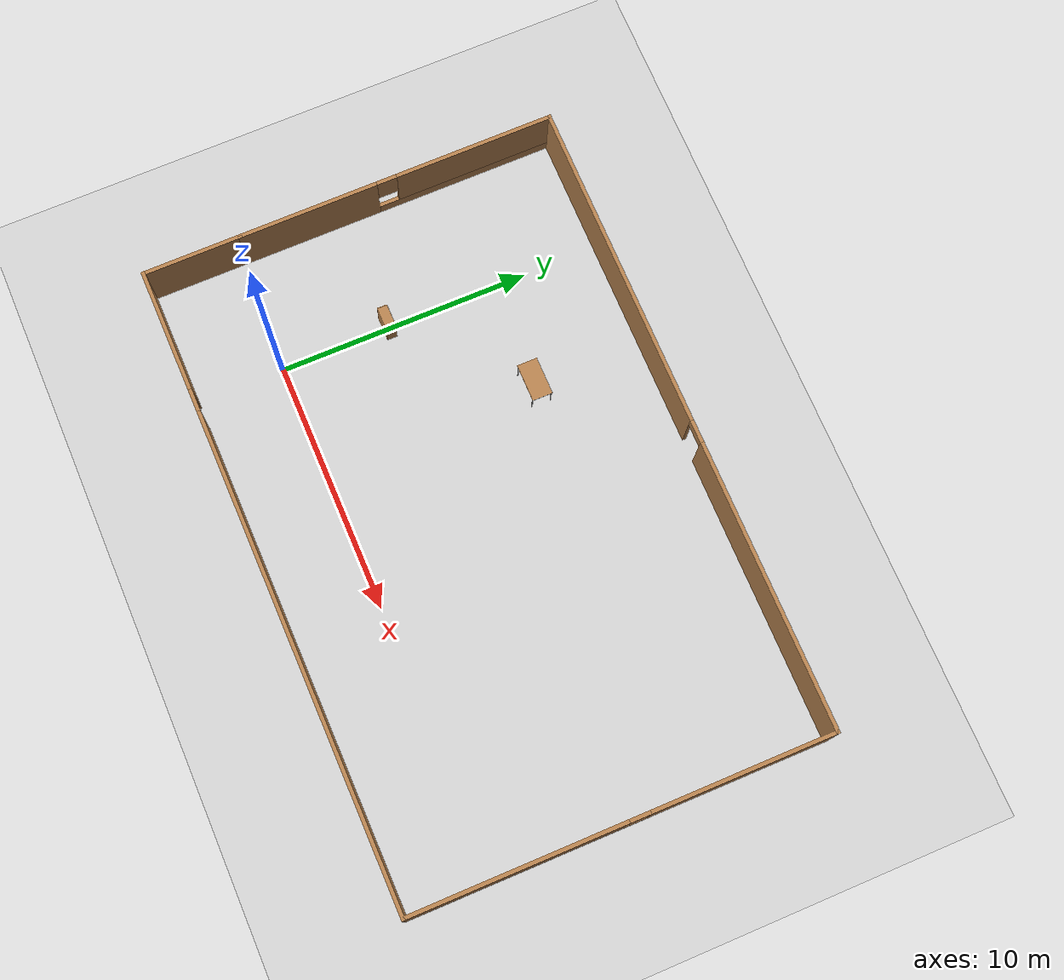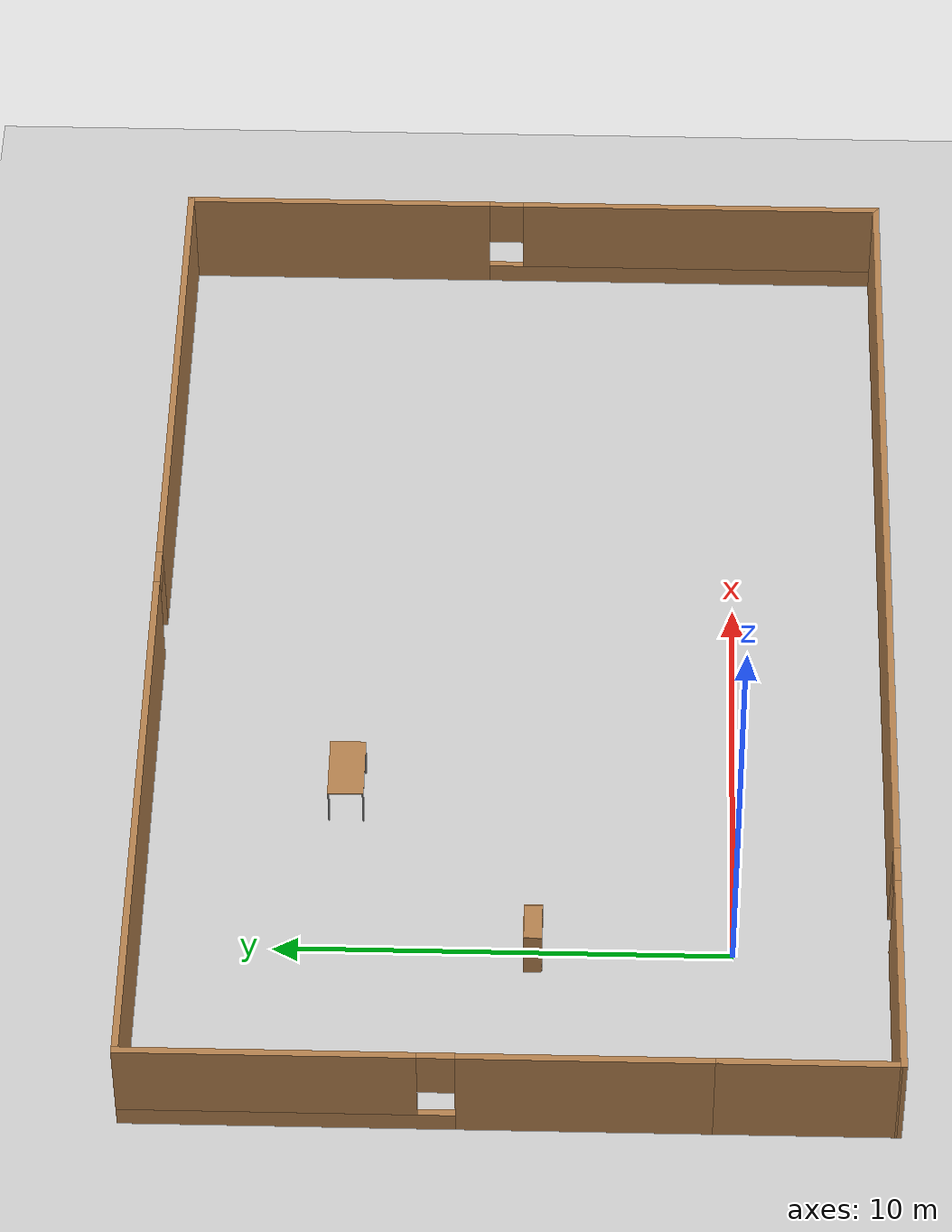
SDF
<sdf version="1.7">
 <world name="default">
  <light name="sun" type="directional">
   <pose>0 0 10 0 -0 0</pose>
   <diffuse>0.8 0.8 0.8 1</diffuse>
   <specular>0.2 0.2 0.2 1</specular>
   <attenuation>
    <range>1000</range>
    <constant>0.9</constant>
    <linear>0.01</linear>
    <quadratic>0.001</quadratic>
   </attenuation>
   <direction>-0.5 0.1 -0.9</direction>
   <spot><inner_angle>0</inner_angle><outer_angle>0</outer_angle><falloff>0</falloff></spot>
  </light>
  <model name="ground_plane">
   <static>1</static>
   <link name="link">
    <collision name="collision">
     <geometry><plane><normal>0 0 1</normal><size>100 100</size></plane></geometry>
     <surface><friction><ode><mu>100</mu><mu2>50</mu2></ode></friction></surface>
    </collision>
    <visual name="visual">
     <cast_shadows>0</cast_shadows>
     <geometry><plane><normal>0 0 1</normal><size>100 100</size></plane></geometry>
     <material>
      <script><uri>file://media/materials/scripts/gazebo.material</uri><name>Gazebo/Grey</name></script>
     </material>
    </visual>
   </link>
  </model>
  <gravity>0 0 -9.8</gravity>
  <magnetic_field>6e-06 2.3e-05 -4.2e-05</magnetic_field>
  <atmosphere type="adiabatic"/>
  <physics type="ode">
   <max_step_size>0.001</max_step_size>
   <real_time_factor>1</real_time_factor>
   <real_time_update_rate>1000</real_time_update_rate>
  </physics>
  <scene><ambient>0.4 0.4 0.4 1</ambient><background>0.7 0.7 0.7 1</background><shadows>1</shadows></scene>
  <audio><device>default</device></audio>
  <spherical_coordinates>
   <surface_model>EARTH_WGS84</surface_model>
   <latitude_deg>0</latitude_deg>
   <longitude_deg>0</longitude_deg>
   <elevation>0</elevation>
   <heading_deg>0</heading_deg>
  </spherical_coordinates>
  <model name="bookshelf">
   <static>1</static>
   <link name="link">
    <inertial><mass>1</mass></inertial>
    <collision name="back">
     <pose>0 0.005 0.6 0 -0 0</pose>
     <geometry><box><size>0.9 0.01 1.2</size></box></geometry>
    </collision>
    <visual name="visual1">
     <pose>0 0.005 0.6 0 -0 0</pose>
     <geometry><box><size>0.9 0.01 1.2</size></box></geometry>
     <material>
      <script><uri>file://media/materials/scripts/gazebo.material</uri><name>Gazebo/Wood</name></script>
     </material>
    </visual>
    <collision name="left_side">
     <pose>0.45 -0.195 0.6 0 -0 0</pose>
     <geometry><box><size>0.02 0.4 1.2</size></box></geometry>
    </collision>
    <visual name="visual2">
     <pose>0.45 -0.195 0.6 0 -0 0</pose>
     <geometry><box><size>0.02 0.4 1.2</size></box></geometry>
     <material>
      <script><uri>file://media/materials/scripts/gazebo.material</uri><name>Gazebo/Wood</name></script>
     </material>
    </visual>
    <collision name="right_side">
     <pose>-0.45 -0.195 0.6 0 -0 0</pose>
     <geometry><box><size>0.02 0.4 1.2</size></box></geometry>
    </collision>
    <visual name="visual3">
     <pose>-0.45 -0.195 0.6 0 -0 0</pose>
     <geometry><box><size>0.02 0.4 1.2</size></box></geometry>
     <material>
      <script><uri>file://media/materials/scripts/gazebo.material</uri><name>Gazebo/Wood</name></script>
     </material>
    </visual>
    <collision name="bottom">
     <pose>0 -0.195 0.03 0 -0 0</pose>
     <geometry><box><size>0.88 0.4 0.06</size></box></geometry>
    </collision>
    <visual name="visual4">
     <pose>0 -0.195 0.03 0 -0 0</pose>
     <geometry><box><size>0.88 0.4 0.06</size></box></geometry>
     <material>
      <script><uri>file://media/materials/scripts/gazebo.material</uri><name>Gazebo/Wood</name></script>
     </material>
    </visual>
    <collision name="top">
     <pose>0 -0.195 1.19 0 -0 0</pose>
     <geometry><box><size>0.88 0.4 0.02</size></box></geometry>
    </collision>
    <visual name="visual5">
     <pose>0 -0.195 1.19 0 -0 0</pose>
     <geometry><box><size>0.88 0.4 0.02</size></box></geometry>
     <material>
      <script><uri>file://media/materials/scripts/gazebo.material</uri><name>Gazebo/Wood</name></script>
     </material>
    </visual>
    <collision name="low_shelf">
     <pose>0 -0.195 0.43 0 -0 0</pose>
     <geometry><box><size>0.88 0.4 0.02</size></box></geometry>
    </collision>
    <visual name="visual6">
     <pose>0 -0.195 0.43 0 -0 0</pose>
     <geometry><box><size>0.88 0.4 0.02</size></box></geometry>
     <material>
      <script><uri>file://media/materials/scripts/gazebo.material</uri><name>Gazebo/Wood</name></script>
     </material>
    </visual>
    <collision name="high_shelf">
     <pose>0 -0.195 0.8 0 -0 0</pose>
     <geometry><box><size>0.88 0.4 0.02</size></box></geometry>
    </collision>
    <visual name="visual7">
     <pose>0 -0.195 0.8 0 -0 0</pose>
     <geometry><box><size>0.88 0.4 0.02</size></box></geometry>
     <material>
      <script><uri>file://media/materials/scripts/gazebo.material</uri><name>Gazebo/Wood</name></script>
     </material>
    </visual>
   </link>
   <pose>-0.045251 4.53716 0 0 -0 0</pose>
  </model>
  <model name="table">
   <static>1</static>
   <link name="link">
    <collision name="surface">
     <pose>0 0 1 0 -0 0</pose>
     <geometry><box><size>1.5 0.8 0.03</size></box></geometry>
     <surface><friction><ode><mu>0.6</mu><mu2>0.6</mu2></ode></friction></surface>
    </collision>
    <visual name="visual1">
     <pose>0 0 1 0 -0 0</pose>
     <geometry><box><size>1.5 0.8 0.03</size></box></geometry>
     <material>
      <script><uri>file://media/materials/scripts/gazebo.material</uri><name>Gazebo/Wood</name></script>
     </material>
    </visual>
    <collision name="front_left_leg">
     <pose>0.68 0.38 0.5 0 -0 0</pose>
     <geometry><cylinder><radius>0.02</radius><length>1</length></cylinder></geometry>
    </collision>
    <visual name="front_left_leg">
     <pose>0.68 0.38 0.5 0 -0 0</pose>
     <geometry><cylinder><radius>0.02</radius><length>1</length></cylinder></geometry>
     <material>
      <script><uri>file://media/materials/scripts/gazebo.material</uri><name>Gazebo/Grey</name></script>
     </material>
    </visual>
    <collision name="front_right_leg">
     <pose>0.68 -0.38 0.5 0 -0 0</pose>
     <geometry><cylinder><radius>0.02</radius><length>1</length></cylinder></geometry>
    </collision>
    <visual name="front_right_leg">
     <pose>0.68 -0.38 0.5 0 -0 0</pose>
     <geometry><cylinder><radius>0.02</radius><length>1</length></cylinder></geometry>
     <material>
      <script><uri>file://media/materials/scripts/gazebo.material</uri><name>Gazebo/Grey</name></script>
     </material>
    </visual>
    <collision name="back_right_leg">
     <pose>-0.68 -0.38 0.5 0 -0 0</pose>
     <geometry><cylinder><radius>0.02</radius><length>1</length></cylinder></geometry>
    </collision>
    <visual name="back_right_leg">
     <pose>-0.68 -0.38 0.5 0 -0 0</pose>
     <geometry><cylinder><radius>0.02</radius><length>1</length></cylinder></geometry>
     <material>
      <script><uri>file://media/materials/scripts/gazebo.material</uri><name>Gazebo/Grey</name></script>
     </material>
    </visual>
    <collision name="back_left_leg">
     <pose>-0.68 0.38 0.5 0 -0 0</pose>
     <geometry><cylinder><radius>0.02</radius><length>1</length></cylinder></geometry>
    </collision>
    <visual name="back_left_leg">
     <pose>-0.68 0.38 0.5 0 -0 0</pose>
     <geometry><cylinder><radius>0.02</radius><length>1</length></cylinder></geometry>
     <material>
      <script><uri>file://media/materials/scripts/gazebo.material</uri><name>Gazebo/Grey</name></script>
     </material>
    </visual>
   </link>
   <pose>4.33591 8.559 0 0 -0 0</pose>
  </model>
  <model name="NewWorld">
   <pose>8.01536 4.74867 0 0 -0 0</pose>
   <link name="Wall_1">
    <collision name="Wall_1_Collision">
     <geometry><box><size>4 0.15 2.5</size></box></geometry>
     <pose>0 0 1.25 0 -0 0</pose>
    </collision>
    <visual name="Wall_1_Visual">
     <pose>0 0 1.25 0 -0 0</pose>
     <geometry><box><size>4 0.15 2.5</size></box></geometry>
     <material>
      <script><uri>file://media/materials/scripts/gazebo.material</uri><name>Gazebo/Wood</name></script>
      <ambient>1 1 1 1</ambient>
     </material>
     <meta><layer>0</layer></meta>
    </visual>
    <pose>-12.675 -6.29985 0 0 -0 1.5708</pose>
   </link>
   <link name="Wall_2">
    <pose>-12.675 1.92515 0 0 -0 1.5708</pose>
    <visual name="Wall_2_Visual_0">
     <pose>-3.58435 0 1.25 0 -0 0</pose>
     <geometry><box><size>5.58131 0.15 2.5</size></box></geometry>
     <material>
      <script><uri>file://media/materials/scripts/gazebo.material</uri><name>Gazebo/Wood</name></script>
      <ambient>1 1 1 1</ambient>
     </material>
     <meta><layer>0</layer></meta>
    </visual>
    <collision name="Wall_2_Collision_0">
     <geometry><box><size>5.58131 0.15 2.5</size></box></geometry>
     <pose>-3.58435 0 1.25 0 -0 0</pose>
    </collision>
    <visual name="Wall_2_Visual_1">
     <pose>2.79065 0 0.25 0 -0 0</pose>
     <geometry><box><size>7.16869 0.15 0.5</size></box></geometry>
     <material>
      <script><uri>file://media/materials/scripts/gazebo.material</uri><name>Gazebo/Wood</name></script>
      <ambient>1 1 1 1</ambient>
     </material>
     <meta><layer>0</layer></meta>
    </visual>
    <collision name="Wall_2_Collision_1">
     <geometry><box><size>7.16869 0.15 0.5</size></box></geometry>
     <pose>2.79065 0 0.25 0 -0 0</pose>
    </collision>
    <visual name="Wall_2_Visual_2">
     <pose>3.19065 0 1.5 0 -0 0</pose>
     <geometry><box><size>6.36869 0.15 2</size></box></geometry>
     <material>
      <script><uri>file://media/materials/scripts/gazebo.material</uri><name>Gazebo/Wood</name></script>
      <ambient>1 1 1 1</ambient>
     </material>
     <meta><layer>0</layer></meta>
    </visual>
    <collision name="Wall_2_Collision_2">
     <geometry><box><size>6.36869 0.15 2</size></box></geometry>
     <pose>3.19065 0 1.5 0 -0 0</pose>
    </collision>
    <visual name="Wall_2_Visual_3">
     <pose>-0.393692 0 1.9 0 -0 0</pose>
     <geometry><box><size>0.8 0.15 1.2</size></box></geometry>
     <material>
      <script><uri>file://media/materials/scripts/gazebo.material</uri><name>Gazebo/Wood</name></script>
      <ambient>1 1 1 1</ambient>
     </material>
     <meta><layer>0</layer></meta>
    </visual>
    <collision name="Wall_2_Collision_3">
     <geometry><box><size>0.8 0.15 1.2</size></box></geometry>
     <pose>-0.393692 0 1.9 0 -0 0</pose>
    </collision>
   </link>
   <link name="Wall_3">
    <pose>0 8.22515 0 0 -0 0</pose>
    <visual name="Wall_3_Visual_0">
     <pose>-6.17308 0 1.25 0 -0 0</pose>
     <geometry><box><size>13.1538 0.15 2.5</size></box></geometry>
     <material>
      <script><uri>file://media/materials/scripts/gazebo.material</uri><name>Gazebo/Wood</name></script>
      <ambient>1 1 1 1</ambient>
     </material>
     <meta><layer>0</layer></meta>
    </visual>
    <collision name="Wall_3_Collision_0">
     <geometry><box><size>13.1538 0.15 2.5</size></box></geometry>
     <pose>-6.17308 0 1.25 0 -0 0</pose>
    </collision>
    <visual name="Wall_3_Visual_1">
     <pose>7.02692 0 1.25 0 -0 0</pose>
     <geometry><box><size>11.4462 0.15 2.5</size></box></geometry>
     <material>
      <script><uri>file://media/materials/scripts/gazebo.material</uri><name>Gazebo/Wood</name></script>
      <ambient>1 1 1 1</ambient>
     </material>
     <meta><layer>0</layer></meta>
    </visual>
    <collision name="Wall_3_Collision_1">
     <geometry><box><size>11.4462 0.15 2.5</size></box></geometry>
     <pose>7.02692 0 1.25 0 -0 0</pose>
    </collision>
    <visual name="Wall_3_Visual_2">
     <pose>0.853834 0 2.25 0 -0 0</pose>
     <geometry><box><size>0.9 0.15 0.5</size></box></geometry>
     <material>
      <script><uri>file://media/materials/scripts/gazebo.material</uri><name>Gazebo/Wood</name></script>
      <ambient>1 1 1 1</ambient>
     </material>
     <meta><layer>0</layer></meta>
    </visual>
    <collision name="Wall_3_Collision_2">
     <geometry><box><size>0.9 0.15 0.5</size></box></geometry>
     <pose>0.853834 0 2.25 0 -0 0</pose>
    </collision>
   </link>
   <link name="Wall_4">
    <pose>12.675 0.050147 0 0 -0 -1.5708</pose>
    <visual name="Wall_4_Visual_0">
     <pose>-4.64589 0 1.25 0 -0 0</pose>
     <geometry><box><size>7.20822 0.15 2.5</size></box></geometry>
     <material>
      <script><uri>file://media/materials/scripts/gazebo.material</uri><name>Gazebo/Wood</name></script>
      <ambient>1 1 1 1</ambient>
     </material>
     <meta><layer>0</layer></meta>
    </visual>
    <collision name="Wall_4_Collision_0">
     <geometry><box><size>7.20822 0.15 2.5</size></box></geometry>
     <pose>-4.64589 0 1.25 0 -0 0</pose>
    </collision>
    <visual name="Wall_4_Visual_1">
     <pose>3.60411 0 0.25 0 -0 0</pose>
     <geometry><box><size>9.29179 0.15 0.5</size></box></geometry>
     <material>
      <script><uri>file://media/materials/scripts/gazebo.material</uri><name>Gazebo/Wood</name></script>
      <ambient>1 1 1 1</ambient>
     </material>
     <meta><layer>0</layer></meta>
    </visual>
    <collision name="Wall_4_Collision_1">
     <geometry><box><size>9.29179 0.15 0.5</size></box></geometry>
     <pose>3.60411 0 0.25 0 -0 0</pose>
    </collision>
    <visual name="Wall_4_Visual_2">
     <pose>4.00411 0 1.5 0 -0 0</pose>
     <geometry><box><size>8.49179 0.15 2</size></box></geometry>
     <material>
      <script><uri>file://media/materials/scripts/gazebo.material</uri><name>Gazebo/Wood</name></script>
      <ambient>1 1 1 1</ambient>
     </material>
     <meta><layer>0</layer></meta>
    </visual>
    <collision name="Wall_4_Collision_2">
     <geometry><box><size>8.49179 0.15 2</size></box></geometry>
     <pose>4.00411 0 1.5 0 -0 0</pose>
    </collision>
    <visual name="Wall_4_Visual_3">
     <pose>-0.641785 0 1.9 0 -0 0</pose>
     <geometry><box><size>0.8 0.15 1.2</size></box></geometry>
     <material>
      <script><uri>file://media/materials/scripts/gazebo.material</uri><name>Gazebo/Wood</name></script>
      <ambient>1 1 1 1</ambient>
     </material>
     <meta><layer>0</layer></meta>
    </visual>
    <collision name="Wall_4_Collision_3">
     <geometry><box><size>0.8 0.15 1.2</size></box></geometry>
     <pose>-0.641785 0 1.9 0 -0 0</pose>
    </collision>
   </link>
   <link name="Wall_5">
    <pose>0 -8.17485 0 0 -0 -3.13765</pose>
    <visual name="Wall_5_Visual_0">
     <pose>-2.93417 0 1.25 0 -0 0</pose>
     <geometry><box><size>19.6317 0.15 2.5</size></box></geometry>
     <material>
      <script><uri>file://media/materials/scripts/gazebo.material</uri><name>Gazebo/Wood</name></script>
      <ambient>1 1 1 1</ambient>
     </material>
     <meta><layer>0</layer></meta>
    </visual>
    <collision name="Wall_5_Collision_0">
     <geometry><box><size>19.6317 0.15 2.5</size></box></geometry>
     <pose>-2.93417 0 1.25 0 -0 0</pose>
    </collision>
    <visual name="Wall_5_Visual_1">
     <pose>10.2658 0 1.25 0 -0 0</pose>
     <geometry><box><size>4.96833 0.15 2.5</size></box></geometry>
     <material>
      <script><uri>file://media/materials/scripts/gazebo.material</uri><name>Gazebo/Wood</name></script>
      <ambient>1 1 1 1</ambient>
     </material>
     <meta><layer>0</layer></meta>
    </visual>
    <collision name="Wall_5_Collision_1">
     <geometry><box><size>4.96833 0.15 2.5</size></box></geometry>
     <pose>10.2658 0 1.25 0 -0 0</pose>
    </collision>
    <visual name="Wall_5_Visual_2">
     <pose>7.33167 0 2.25 0 -0 0</pose>
     <geometry><box><size>0.9 0.15 0.5</size></box></geometry>
     <material>
      <script><uri>file://media/materials/scripts/gazebo.material</uri><name>Gazebo/Wood</name></script>
      <ambient>1 1 1 1</ambient>
     </material>
     <meta><layer>0</layer></meta>
    </visual>
    <collision name="Wall_5_Collision_2">
     <geometry><box><size>0.9 0.15 0.5</size></box></geometry>
     <pose>7.33167 0 2.25 0 -0 0</pose>
    </collision>
   </link>
   <static>1</static>
  </model>
 </world>
</sdf>
